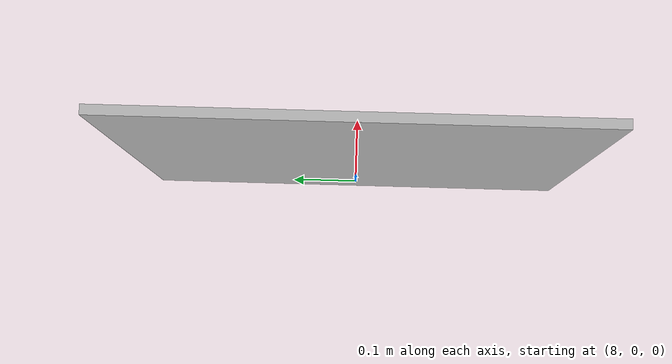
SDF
<?xml version="1.0" ?>
<sdf version="1.5">

<!-- https://github.com/uuvsimulator/uuv_simulator/wiki/Making-your-seabed-world-model -->

  <world name="perception">

<spherical_coordinates>
  <surface_model>EARTH_WGS84</surface_model>
  <world_frame_orientation>ENU</world_frame_orientation>

  <latitude_deg>38.161479</latitude_deg>
  <longitude_deg>-122.454630</longitude_deg>
  <elevation>0</elevation>
  <heading_deg>180</heading_deg>
</spherical_coordinates>

    <frame name="world">
      <!-- Définissez les coordonnées de référence, par exemple : -->
      <pose>0 0 0 0 0 0</pose>
    </frame>

    <physics name ="default_physics" type="ode">
      <real_time_update_rate>500.0</real_time_update_rate>
    </physics>

    <model name='ground_plane'>
      <static>1</static>
      <link name='ground'>
        <collision name='collision'>
          <geometry>
            <plane >
              <xyz>0 0 -1</xyz>

              <normal>0 0 1</normal>
              <size>100 100</size>
            </plane>
          </geometry>
          <surface>
            <friction>
              <ode>
                <mu>100</mu>
                <mu2>50</mu2>
              </ode>
            </friction>
          </surface>
        </collision>
      </link>
    </model>

    <model name="tag36_11_00001">
    <static>true</static>
    <link name="link">
      <visual name="visual">
        <geometry>
          <mesh>
            <uri>model://tag36_11_00001/meshes/tag36_11_00001.dae</uri>
          <scale>1.25 1.25 1.25</scale>
          </mesh>
        </geometry>
      </visual>
    </link>
    <pose> 8.0 0 0 0 0 0</pose>
  </model>

  </world>

</sdf>
